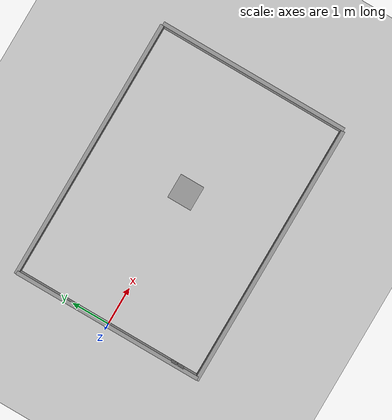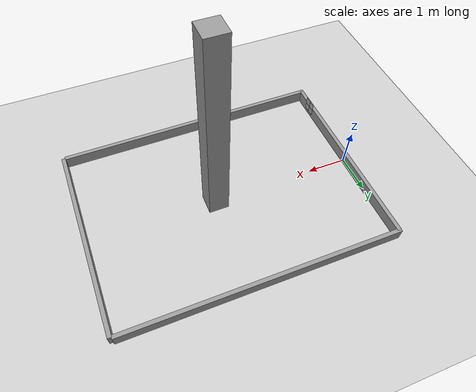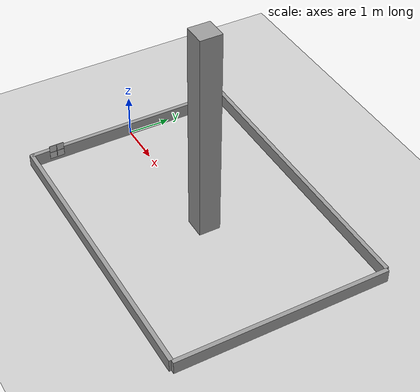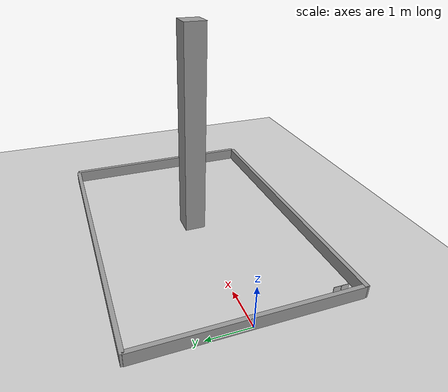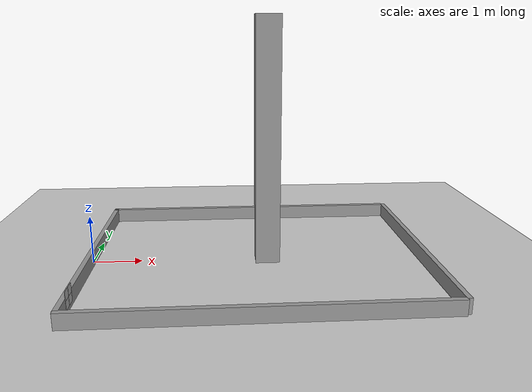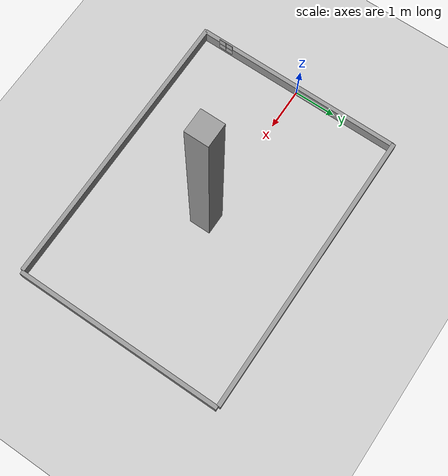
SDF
<sdf version="1.4">
 <world name="arena">
  <include><uri>model://sun</uri></include>
  <include><uri>model://ground_plane</uri></include>
  <include><uri>model://apriltag_board</uri><pose>0.05 -2 0.34 0 1.57 0</pose></include>
  <include><uri>model://arena_frame_nasa</uri></include>
  <physics type="ode">
   <max_step_size>0.01</max_step_size>
   <real_time_factor>1</real_time_factor>
   <real_time_update_rate>100</real_time_update_rate>
   <gravity>0 0 -9.81</gravity>
  </physics>
 </world>
</sdf>

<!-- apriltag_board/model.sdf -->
<sdf version='1.7'>
  <model name='apriltag_board'>
    <pose>0 0 0.5 0 1.57 0</pose>
    <link name='tag_0'>
      <pose>0 0 0 0 -0 0</pose>
      <visual name='main_Visual'>
        <geometry>
          <box>
            <size>0.17 0.17 0.01</size>
          </box>
        </geometry>
        <material>
          <script>
            <uri>model://Apriltag36_11_00000/materials/scripts</uri>
            <uri>model://Apriltag36_11_00000/materials/textures</uri>
            <name>Apriltag36_11_00000</name>
          </script>
        </material>
      </visual>
      <self_collide>0</self_collide>
      <enable_wind>0</enable_wind>
      <kinematic>0</kinematic>
    </link>
    <link name='tag_1'>
      <pose>0.18 0 0 0 -0 0</pose>
      <visual name='main_Visual'>
        <geometry>
          <box>
            <size>0.17 0.17 0.01</size>
          </box>
        </geometry>
        <material>
          <script>
            <uri>model://Apriltag36_11_00001/materials/scripts</uri>
            <uri>model://Apriltag36_11_00001/materials/textures</uri>
            <name>Apriltag36_11_00001</name>
          </script>
        </material>
      </visual>
      <self_collide>0</self_collide>
      <enable_wind>0</enable_wind>
      <kinematic>0</kinematic>
    </link>
    <link name='tag_2'>
      <pose>0.18 0.18 0 0 -0 0</pose>
      <visual name='main_Visual'>
        <geometry>
          <box>
            <size>0.17 0.17 0.01</size>
          </box>
        </geometry>
        <material>
          <script>
            <uri>model://Apriltag36_11_00002/materials/scripts</uri>
            <uri>model://Apriltag36_11_00002/materials/textures</uri>
            <name>Apriltag36_11_00002</name>
          </script>
        </material>
      </visual>
      <self_collide>0</self_collide>
      <enable_wind>0</enable_wind>
      <kinematic>0</kinematic>
    </link>
    <link name='tag_3'>
      <pose>0 0.18 0 0 -0 0</pose>
      <visual name='main_Visual'>
        <geometry>
          <box>
            <size>0.17 0.17 0.01</size>
          </box>
        </geometry>
        <material>
          <script>
            <uri>model://Apriltag36_11_00003/materials/scripts</uri>
            <uri>model://Apriltag36_11_00003/materials/textures</uri>
            <name>Apriltag36_11_00003</name>
          </script>
        </material>
      </visual>
      <self_collide>0</self_collide>
      <enable_wind>0</enable_wind>
      <kinematic>0</kinematic>
    </link>
    <static>1</static>
  </model>
</sdf>

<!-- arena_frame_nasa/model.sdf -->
<sdf version='1.7'>
  <model name='arena_frame'>
    <pose>0 0 0 0 -0 0</pose>
      <link name='left_wall'>
        <collision name='left_wall_Collision'>
          <geometry>
            <box>
              <size>0.1 5 0.6</size>
            </box>
          </geometry>
          <pose>0 0 0 0 -0 0</pose>
          <max_contacts>10</max_contacts>
          <surface>
            <contact>
              <ode/>
            </contact>
            <bounce/>
            <friction>
              <torsional>
                <ode/>
              </torsional>
              <ode/>
            </friction>
          </surface>
        </collision>
        <visual name='left_wall_Visual'>
          <pose>0 0 0 0 -0 0</pose>
          <geometry>
            <box>
              <size>0.1 5 0.6</size>
            </box>
          </geometry>
          <material>
            <script>
              <uri>file://media/materials/scripts/gazebo.material</uri>
              <name>Gazebo/Grey</name>
            </script>
            <ambient>1 1 1 1</ambient>
          </material>
          <meta>
            <layer>0</layer>
          </meta>
        </visual>
        <pose>0 0 0 0 -0 0</pose>
        <self_collide>0</self_collide>
        <enable_wind>0</enable_wind>
        <kinematic>0</kinematic>
      </link>
      <link name='right_wall'>
        <collision name='right_wall_Collision'>
          <geometry>
            <box>
              <size>0.1 5 0.6</size>
            </box>
          </geometry>
          <max_contacts>10</max_contacts>
          <surface>
            <contact>
              <ode/>
            </contact>
            <bounce/>
            <friction>
              <torsional>
                <ode/>
              </torsional>
              <ode/>
            </friction>
          </surface>
        </collision>
        <visual name='right_wall_Visual'>
          <geometry>
            <box>
              <size>0.1 5 0.6</size>
            </box>
          </geometry>
          <material>
            <script>
              <uri>file://media/materials/scripts/gazebo.material</uri>
              <name>Gazebo/Grey</name>
            </script>
            <ambient>1 1 1 1</ambient>
          </material>
          <meta>
            <layer>0</layer>
          </meta>
        </visual>
        <pose>6.88 0 0 0 -0 0</pose>
        <self_collide>0</self_collide>
        <enable_wind>0</enable_wind>
        <kinematic>0</kinematic>
      </link>
      <link name='top_wall'>
        <collision name='top_wall_Collision'>
          <geometry>
            <box>
              <size>6.88 0.1 0.6</size>
            </box>
          </geometry>
          <max_contacts>10</max_contacts>
          <surface>
            <contact>
              <ode/>
            </contact>
            <bounce/>
            <friction>
              <torsional>
                <ode/>
              </torsional>
              <ode/>
            </friction>
          </surface>
        </collision>
        <visual name='top_wall_Visual'>
          <geometry>
            <box>
              <size>6.88 0.1 0.6</size>
            </box>
          </geometry>
          <material>
            <script>
              <uri>file://media/materials/scripts/gazebo.material</uri>
              <name>Gazebo/Grey</name>
            </script>
            <ambient>1 1 1 1</ambient>
          </material>
          <meta>
            <layer>0</layer>
          </meta>
        </visual>
        <pose>3.4 2.5 0 0 -0 0</pose>
        <self_collide>0</self_collide>
        <enable_wind>0</enable_wind>
        <kinematic>0</kinematic>
      </link>
      <link name='bottom_wall'>
        <collision name='bottom_wall_Collision'>
          <geometry>
            <box>
              <size>6.88 0.1 0.6</size>
            </box>
          </geometry>
          <max_contacts>10</max_contacts>
          <surface>
            <contact>
              <ode/>
            </contact>
            <bounce/>
            <friction>
              <torsional>
                <ode/>
              </torsional>
              <ode/>
            </friction>
          </surface>
        </collision>
        <visual name='bottom_wall_Visual'>
          <geometry>
            <box>
              <size>6.88 0.1 0.6</size>
            </box>
          </geometry>
          <material>
            <script>
              <uri>file://media/materials/scripts/gazebo.material</uri>
              <name>Gazebo/Grey</name>
            </script>
            <ambient>1 1 1 1</ambient>
          </material>
          <meta>
            <layer>0</layer>
          </meta>
        </visual>
        <pose>3.4 -2.5 0 0 -0 0</pose>
        <self_collide>0</self_collide>
        <enable_wind>0</enable_wind>
        <kinematic>0</kinematic>
      </link>
      <link name='pole'>
        <collision name='pole_Collision'>
          <geometry>
            <box>
              <size>0.5 0.5 5</size>
            </box>
          </geometry>
          <pose>3.63 0 2.5 0 -0 0</pose>
          <max_contacts>10</max_contacts>
          <surface>
            <contact>
              <ode/>
            </contact>
            <bounce/>
            <friction>
              <torsional>
                <ode/>
              </torsional>
              <ode/>
            </friction>
          </surface>
        </collision>
        <visual name='pole_Visual'>
          <pose>3.63 0 2.5 0 -0 0</pose>
          <geometry>
            <box>
              <size>0.5 0.5 5</size>
            </box>
          </geometry>
          <material>
            <script>
              <uri>file://media/materials/scripts/gazebo.material</uri>
              <name>Gazebo/Grey</name>
            </script>
            <ambient>1 1 1 1</ambient>
          </material>
          <meta>
            <layer>0</layer>
          </meta>
        </visual>
        <pose>0 0 0 0 -0 0</pose>
        <self_collide>0</self_collide>
        <enable_wind>0</enable_wind>
        <kinematic>0</kinematic>
      </link>
    <static>1</static>
  </model>
</sdf>
